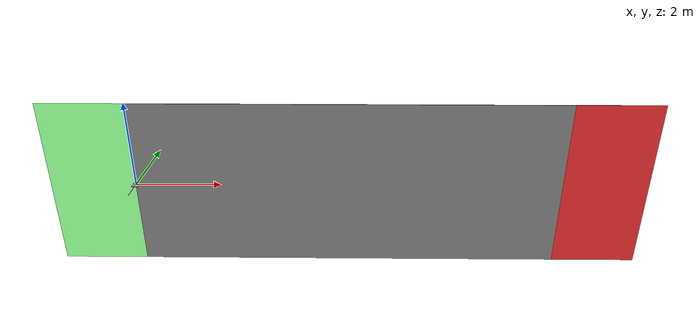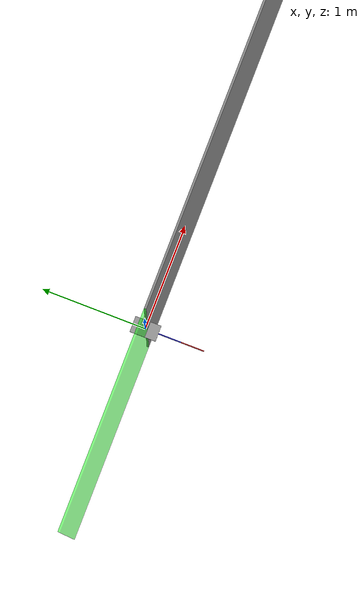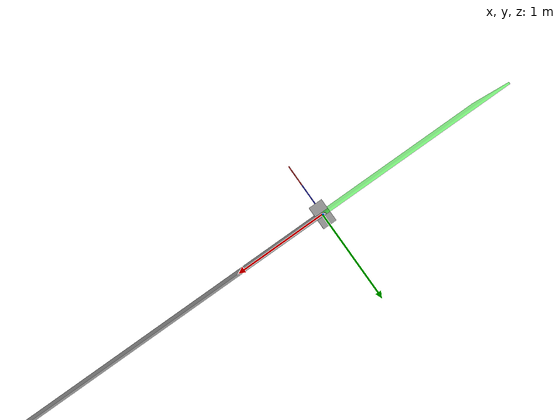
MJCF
<mujoco model="robot_basic_task_3">

    <!--  set the values -kp^ground and -kd^ground  -->
    <option timestep="0.001" o_solref="-100000 -1000" gravity="0 -9.81 0">
        <flag override="enable"/>
    </option>

    <default>
        <geom contype="1" conaffinity="1" friction="0.5 0 0"/> <!-- slide (dynamic), spin(0), roll (0)-->
        <joint type="hinge" damping="0.5"/> <!-- add joint damping-->
    </default>

    <asset>
    <!-- Checker texture -->
    <texture name="ground_checker"
                type="2d"
                builtin="checker"
                rgb1="0.45 0.45 0.45"
                rgb2="0.65 0.65 0.65"
                width="512"
                height="512"/>

    <!-- Material using the checker texture -->
    <material name="groundplane"
                texture="ground_checker"
                texrepeat="10 10"
                texuniform="true"/>

    <!-- Other materials -->
    <material name="gray" rgba="0.6 0.6 0.6 1"/>
    <material name="blue" rgba="0.2 0.2 1 1"/>
    <material name="red" rgba="1 0.2 0.2 1"/>
    <material name="yellow" rgba="1 1 0.3 1"/>
    <material name="green" rgba="0 1 0 0.5"/>
    </asset>

    <worldbody>
        <light pos="0 0 2" dir="0 -1 -1" directional="true"/>

        <!-- Ground in XZ plane at Y=0 -->
        <body pos="0 0 0">
            <geom name="floor" type="box" size="5 0.01 2" pos="5 -0.01 0" material="groundplane" />
            <geom name="start" type="box" size="1 0.01 2" pos="-1 -0.01 0" material="green" />
            <geom name="end" type="box" size="1 0.01 2" pos="11 -0.01 0" material="red" />
        </body>

        <!-- Body (trunk) -->
        <body name="trunk" pos="0 0 0">
            <!-- trunk intertia-->
            <inertial pos="0 0 0" mass="8" diaginertia="0.0567 0.0567 0.0567"/>

            <!-- planar motion of trunk-->
            <joint name="x" type="slide" axis="1 0 0"/>
            <joint name="y" type="slide" axis="0 1 0"/>
            <joint name="theta" type="hinge" axis="0 0 1"/>

            <!-- Trunk geometry (COM) - contype 2 for trunk-->
            <geom name="trunk_geom" type="box" size="0.075 0.125 0.01" material="gray" contype="2" conaffinity="2"/>
            <!-- width=0.15/2=0.075, height=0.25/2=0.125 -->

            <!-- Leg 1 - contype 4, conaffinity 5 (collides with ground=1 and trunk=2) -->
            <body name="leg_1" pos="0 -0.125 0"> <!-- located at base of trunk in Y axis, centered in X-->
                <inertial pos="0 -0.11 0" mass="0.25" diaginertia="0.001 1e-6 0.001"/> <!-- set the mass properties relative to body frame-->
                <joint name="q1" type="hinge" axis="0 0 1" limited="true" range="-115 25"/>
                <geom name="leg_1_geom" type="capsule" fromto="0 0 0 0 -0.22 0" size="0.005" material="blue" contype="4" conaffinity="3"/>

                <!-- leg 2 -->
                <body name="leg_2" pos="0 -0.22 0"> <!-- position relative to parent frame (l1)-->
                    <inertial pos="0 -0.11 0" mass="0.25" diaginertia="0.001 1e-6 0.001"/>
                    <joint name="q2" type="hinge" axis="0 0 1" limited="true" range="0 155"/>
                    <geom name="leg_2_geom" type="capsule" fromto="0 0 0 0 -0.22 0" size="0.005" material="red" contype="4" conaffinity="3"/>
                </body>
            </body>

            <!-- leg 3 - contype 8, conaffinity 9 (collides with ground=1 and trunk=2) -->
            <body name="leg_3" pos="0 -0.125 0">
                <inertial pos="0 -0.11 0" mass="0.25" diaginertia="0.001 1e-6 0.001"/>
                <joint name="q3" type="hinge" axis="0 0 1" limited="true" range="-115 25"/>
                <geom name="leg_3_geom" type="capsule" fromto="0 0 0 0 -0.22 0" size="0.005" material="green" contype="8" conaffinity="3"/>

                <!-- leg 4 -->
                <body name="leg_4" pos="0 -0.22 0">
                    <inertial pos="0 -0.11 0" mass="0.25" diaginertia="0.001 1e-6 0.001"/>
                    <joint name="q4" type="hinge" axis="0 0 1" limited="true" range="0 155"/>
                    <geom name="leg_4_geom" type="capsule" fromto="0 0 0 0 -0.22 0" size="0.005" material="yellow" contype="8" conaffinity="3"/>
                </body>
            </body>
        </body>
    </worldbody>

    <actuator>
        <!-- assign actuatores to joints -->
        <motor name="act_q1" joint="q1" gear="1"/>
        <motor name="act_q2" joint="q2" gear="1"/>
        <motor name="act_q3" joint="q3" gear="1"/>
        <motor name="act_q4" joint="q4" gear="1"/>
    </actuator>

</mujoco>
